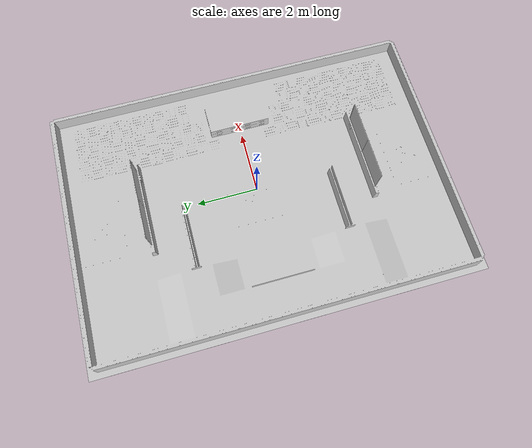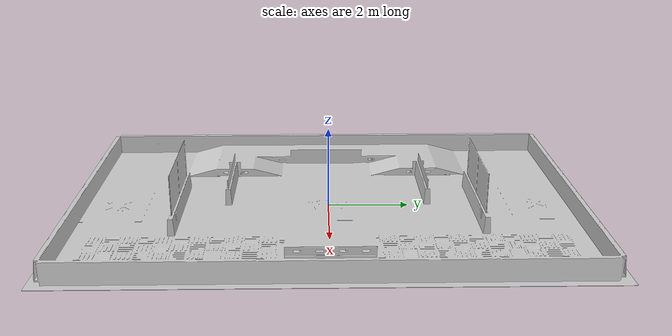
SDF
<sdf version="1.9">
 <world name="ARCC_Field_2026">
  <physics type="ode">
   <max_step_size>0.001</max_step_size>
   <real_time_factor>1</real_time_factor>
   <real_time_update_rate>1000</real_time_update_rate>
  </physics>
  <plugin filename="gz-sim-physics-system" name="gz::sim::systems::Physics"/>
  <plugin filename="gz-sim-user-commands-system" name="gz::sim::systems::UserCommands"/>
  <plugin filename="gz-sim-scene-broadcaster-system" name="gz::sim::systems::SceneBroadcaster"/>
  <plugin filename="gz-sim-imu-system" name="gz::sim::systems::Imu"/>
  <plugin filename="gz-sim-sensors-system" name="gz::sim::systems::Sensors">
   <render_engine>ogre2</render_engine>
  </plugin>
  <light name="sun" type="directional">
   <pose>0 0 10 0 -0 0</pose>
   <diffuse>0.8 0.8 0.8 1</diffuse>
   <specular>0.2 0.2 0.2 1</specular>
   <attenuation>
    <range>1000</range>
    <constant>0.9</constant>
    <linear>0.01</linear>
    <quadratic>0.001</quadratic>
   </attenuation>
   <direction>-0.5 0.1 -0.9</direction>
   <spot><inner_angle>0</inner_angle><outer_angle>0</outer_angle><falloff>0</falloff></spot>
  </light>
  <model name="ARCC_Field_2026">
   <static>true</static>
   <link name="composite_part_1">
    <collision name="composite_part_1_collision">
     <pose>-0.07993219999999999 -0.0015 -0.018 0 0 0</pose>
     <geometry><mesh><scale>1 1 1</scale><uri>model://sentry_pkg/world/composite_part_1.stl</uri></mesh></geometry>
     <surface><friction><ode><mu>100</mu><mu2>50</mu2></ode></friction></surface>
    </collision>
    <visual name="composite_part_1_visual">
     <pose>-0.07993219999999999 -0.0015 -0.018 0 0 0</pose>
     <geometry><mesh><scale>1 1 1</scale><uri>model://sentry_pkg/world/composite_part_1.stl</uri></mesh></geometry>
     <material>
      <diffuse>0.808824 0.808824 0.808824 1</diffuse>
      <ambient>0.808824 0.808824 0.808824 1</ambient>
     </material>
    </visual>
   </link>
  </model>
  <gravity>0 0 -9.8</gravity>
  <magnetic_field>6e-06 2.3e-05 -4.2e-05</magnetic_field>
  <atmosphere type="adiabatic"/>
  <scene><ambient>0.4 0.4 0.4 1</ambient><background>0.7 0.7 0.7 1</background><shadows>1</shadows></scene>
  <spherical_coordinates>
   <surface_model>EARTH_WGS84</surface_model>
   <latitude_deg>0</latitude_deg>
   <longitude_deg>0</longitude_deg>
   <elevation>0</elevation>
   <heading_deg>0</heading_deg>
  </spherical_coordinates>
 </world>
</sdf>
